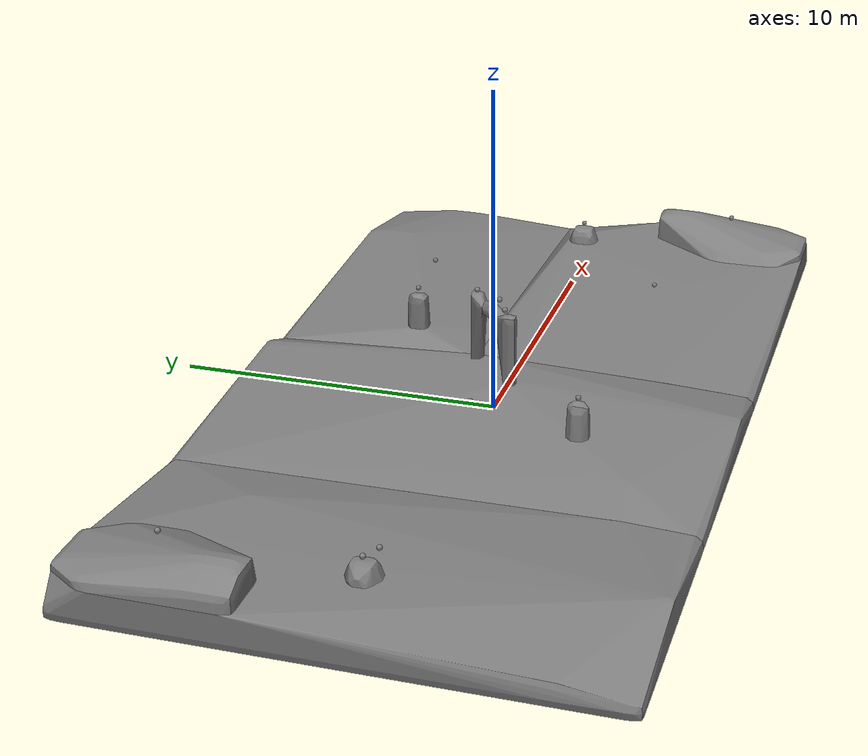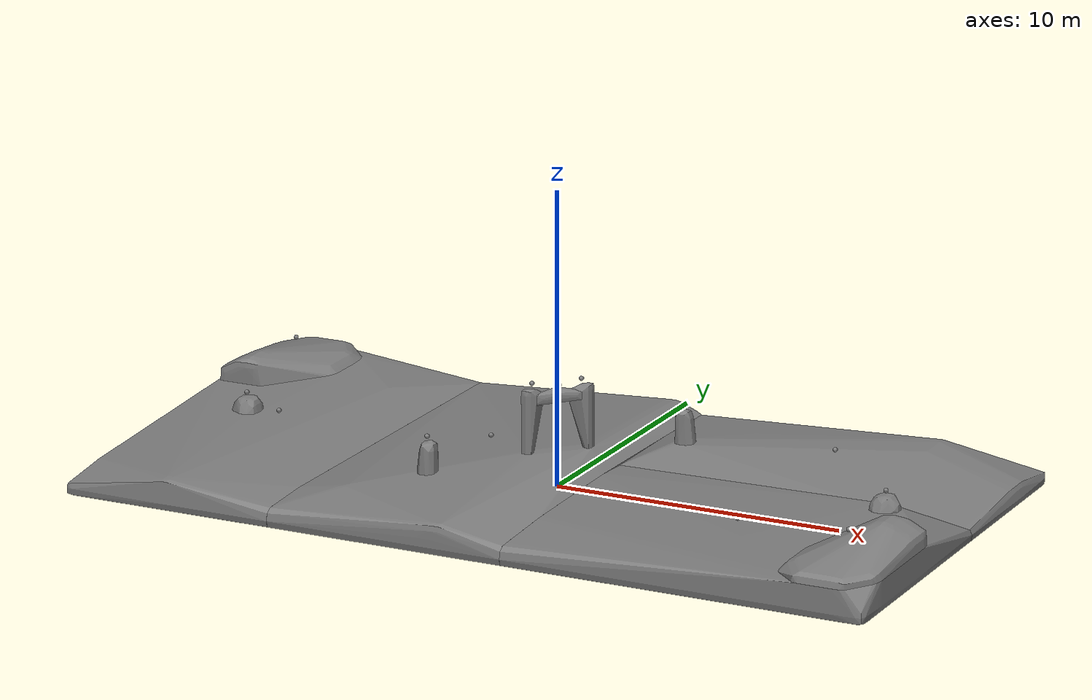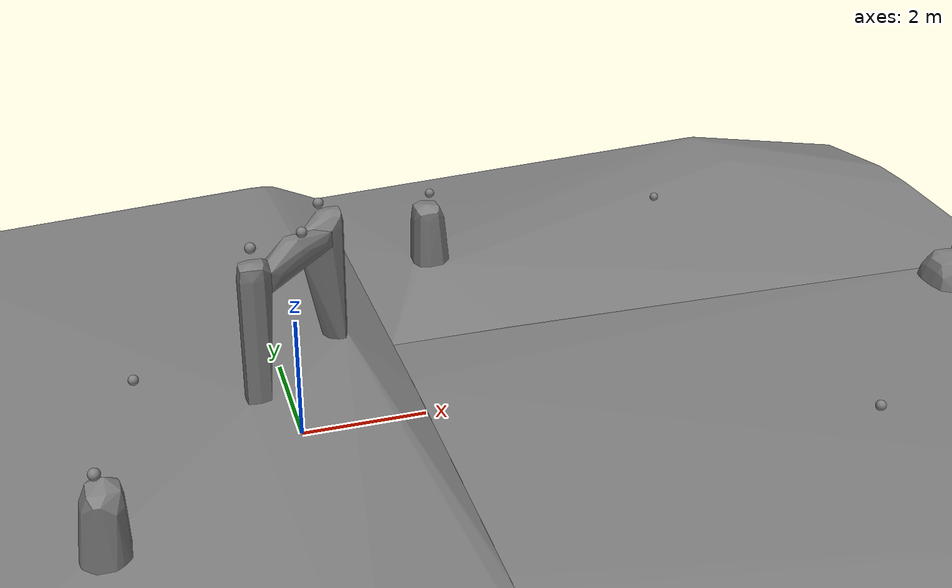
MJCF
<mujoco><option timestep="0.001"/><asset>
    <mesh name="k_cvx_000" file="convex/cvx_000.stl"/>
    <mesh name="k_cvx_001" file="convex/cvx_001.stl"/>
    <mesh name="k_cvx_002" file="convex/cvx_002.stl"/>
    <mesh name="k_cvx_003" file="convex/cvx_003.stl"/>
    <mesh name="k_cvx_004" file="convex/cvx_004.stl"/>
    <mesh name="k_cvx_005" file="convex/cvx_005.stl"/>
    <mesh name="k_cvx_006" file="convex/cvx_006.stl"/>
    <mesh name="k_cvx_007" file="convex/cvx_007.stl"/>
    <mesh name="k_cvx_008" file="convex/cvx_008.stl"/>
    <mesh name="k_cvx_009" file="convex/cvx_009.stl"/>
    <mesh name="k_cvx_010" file="convex/cvx_010.stl"/>
    <mesh name="k_cvx_011" file="convex/cvx_011.stl"/>
    <mesh name="k_cvx_012" file="convex/cvx_012.stl"/>
</asset><worldbody>
  <body name="kb_cvx_000"><geom name="kg_cvx_000" mesh="k_cvx_000" contype="1" conaffinity="1"/></body>
  <body name="q0" pos="11.593 -0.000 1.600"><freejoint/><geom type="sphere" size="0.08" mass="0.5"/></body>
  <body name="kb_cvx_001"><geom name="kg_cvx_001" mesh="k_cvx_001" contype="1" conaffinity="1"/></body>
  <body name="q1" pos="12.498 -5.059 2.004"><freejoint/><geom type="sphere" size="0.08" mass="0.5"/></body>
  <body name="kb_cvx_002"><geom name="kg_cvx_002" mesh="k_cvx_002" contype="1" conaffinity="1"/></body>
  <body name="q2" pos="7.947 4.369 1.133"><freejoint/><geom type="sphere" size="0.08" mass="0.5"/></body>
  <body name="kb_cvx_003"><geom name="kg_cvx_003" mesh="k_cvx_003" contype="1" conaffinity="1"/></body>
  <body name="q3" pos="7.947 -3.285 1.133"><freejoint/><geom type="sphere" size="0.08" mass="0.5"/></body>
  <body name="kb_cvx_004"><geom name="kg_cvx_004" mesh="k_cvx_004" contype="1" conaffinity="1"/></body>
  <body name="q4" pos="-2.430 0.000 1.418"><freejoint/><geom type="sphere" size="0.08" mass="0.5"/></body>
  <body name="kb_cvx_005"><geom name="kg_cvx_005" mesh="k_cvx_005" contype="1" conaffinity="1"/></body>
  <body name="q5" pos="-10.376 0.000 1.133"><freejoint/><geom type="sphere" size="0.08" mass="0.5"/></body>
  <body name="kb_cvx_006"><geom name="kg_cvx_006" mesh="k_cvx_006" contype="1" conaffinity="1"/></body>
  <body name="q6" pos="3.036 3.350 2.273"><freejoint/><geom type="sphere" size="0.08" mass="0.5"/></body>
  <body name="kb_cvx_007"><geom name="kg_cvx_007" mesh="k_cvx_007" contype="1" conaffinity="1"/></body>
  <body name="q7" pos="-12.498 5.059 2.004"><freejoint/><geom type="sphere" size="0.08" mass="0.5"/></body>
  <body name="kb_cvx_008"><geom name="kg_cvx_008" mesh="k_cvx_008" contype="1" conaffinity="1"/></body>
  <body name="q8" pos="-3.036 -3.350 2.273"><freejoint/><geom type="sphere" size="0.08" mass="0.5"/></body>
  <body name="kb_cvx_009"><geom name="kg_cvx_009" mesh="k_cvx_009" contype="1" conaffinity="1"/></body>
  <body name="q9" pos="-0.663 -0.539 3.586"><freejoint/><geom type="sphere" size="0.08" mass="0.5"/></body>
  <body name="kb_cvx_010"><geom name="kg_cvx_010" mesh="k_cvx_010" contype="1" conaffinity="1"/></body>
  <body name="q10" pos="-11.593 0.000 1.600"><freejoint/><geom type="sphere" size="0.08" mass="0.5"/></body>
  <body name="kb_cvx_011"><geom name="kg_cvx_011" mesh="k_cvx_011" contype="1" conaffinity="1"/></body>
  <body name="q11" pos="0.132 -0.152 3.538"><freejoint/><geom type="sphere" size="0.08" mass="0.5"/></body>
  <body name="kb_cvx_012"><geom name="kg_cvx_012" mesh="k_cvx_012" contype="1" conaffinity="1"/></body>
  <body name="q12" pos="0.538 0.659 3.588"><freejoint/><geom type="sphere" size="0.08" mass="0.5"/></body>
</worldbody></mujoco>
